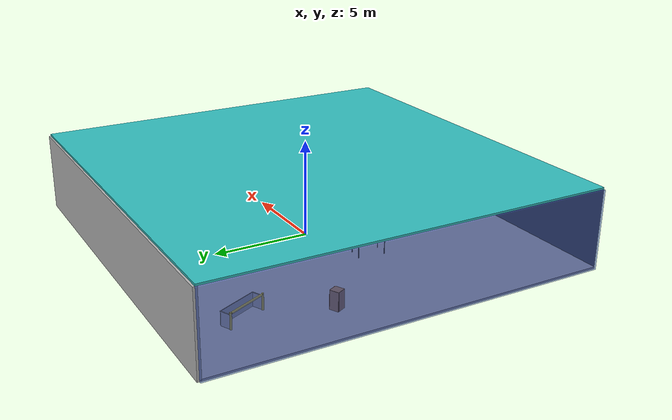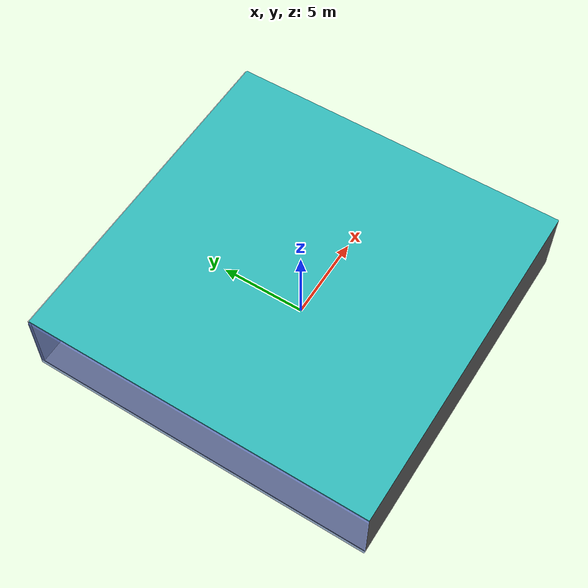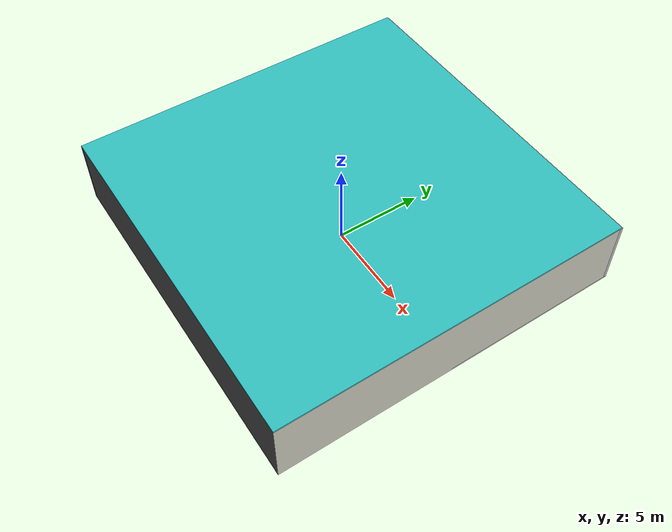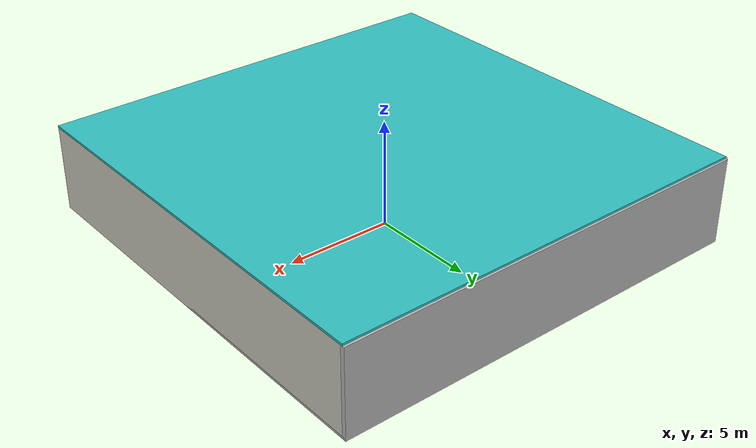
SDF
<sdf version="1.4">
 <world name="default">
  <physics type="ode">
   <max_step_size>0.001</max_step_size>
   <real_time_factor>1</real_time_factor>
   <real_time_update_rate>1000</real_time_update_rate>
   <gravity>0 0 -9.8</gravity>
  </physics>
  <scene><ambient>0.4 0.4 0.4 1</ambient><background>0.7 0.7 0.7 1</background><shadows>1</shadows></scene>
  <model name="Surrounding">
   <static>1</static>
   <link name="Ceiling">
    <collision name="Ceiling_Collision"><geometry><box><size>20 20 0.1</size></box></geometry></collision>
    <visual name="Ceiling_Visual">
     <geometry><box><size>20 20 0.1</size></box></geometry>
     <material>
      <script><uri>file://media/materials/scripts/gazebo.material</uri><name>Gazebo/Turquoise</name></script>
     </material>
    </visual>
    <pose>0 0 4.05 0 0 0</pose>
   </link>
   <link name="Wall_South">
    <collision name="Wall_South_Collision">
     <geometry><box><size>20 0 4</size></box></geometry>
     <pose>0 0 2 0 -0 0</pose>
    </collision>
    <visual name="Wall_South_Visual">
     <pose>0 0 2 0 -0 0</pose>
     <geometry><box><size>20 0 4</size></box></geometry>
     <material>
      <script><uri>file://media/materials/scripts/gazebo.material</uri><name>Gazebo/DarkGrey</name></script>
     </material>
    </visual>
    <velocity_decay><linear>0</linear><angular>0</angular></velocity_decay>
    <pose>0 -10 0 0 -0 0</pose>
   </link>
   <link name="Wall_East">
    <collision name="Wall_21_Collision">
     <geometry><box><size>20 0 4</size></box></geometry>
     <pose>0 0 2 0 -0 0</pose>
    </collision>
    <visual name="Wall_21_Visual">
     <pose>0 0 2 0 -0 0</pose>
     <geometry><box><size>20 0 4</size></box></geometry>
     <material>
      <script><uri>file://media/materials/scripts/gazebo.material</uri><name>Gazebo/PaintedWall</name></script>
     </material>
    </visual>
    <velocity_decay><linear>0</linear><angular>0</angular></velocity_decay>
    <pose>10 0 0 0 -0 1.5708</pose>
   </link>
   <link name="Wall_North">
    <collision name="Wall_22_Collision">
     <geometry><box><size>20 0.2 4</size></box></geometry>
     <pose>0 0 2 0 -0 0</pose>
    </collision>
    <visual name="Wall_22_Visual">
     <pose>0 0 2 0 -0 0</pose>
     <geometry><box><size>20 0.2 4</size></box></geometry>
     <material>
      <script><uri>file://media/materials/scripts/gazebo.material</uri><name>Gazebo/Pioneer2Body</name></script>
     </material>
    </visual>
    <velocity_decay><linear>0</linear><angular>0</angular></velocity_decay>
    <pose>0 10 0 0 -0 0</pose>
   </link>
   <link name="Wall_West">
    <collision name="Wall_23_Collision">
     <geometry><box><size>20 0.2 4</size></box></geometry>
     <pose>0 0 2 0 -0 0</pose>
    </collision>
    <visual name="Wall_23_Visual">
     <pose>0 0 2 0 -0 0</pose>
     <geometry><box><size>20 0.2 4</size></box></geometry>
     <material>
      <script><uri>file://media/materials/scripts/gazebo.material</uri><name>Gazebo/BlueTransparent</name></script>
     </material>
    </visual>
    <velocity_decay><linear>0</linear><angular>0</angular></velocity_decay>
    <pose>-10 0 0 0 0 -1.5708</pose>
   </link>
   <link name="Ground_link">
    <collision name="collision">
     <pose>0 0 .05 0 -0 0</pose>
     <geometry><box><size>20 20 0.1</size></box></geometry>
    </collision>
    <visual name="visual">
     <pose>0 0 .05 0 -0 0</pose>
     <geometry><box><size>20 20 0.1</size></box></geometry>
     <material>
      <script><uri>file://media/materials/scripts/gazebo.material</uri><name>Gazebo/JointAnchor</name></script>
     </material>
    </visual>
   </link>
   <static>1</static>
  </model>
  <spherical_coordinates>
   <surface_model>EARTH_WGS84</surface_model>
   <latitude_deg>0</latitude_deg>
   <longitude_deg>0</longitude_deg>
   <elevation>0</elevation>
   <heading_deg>0</heading_deg>
  </spherical_coordinates>
  <light name="lightball_0" type="diffuse">
   <diffuse>0.8 0.8 0.8 1</diffuse>
   <specular>0.2 0.2 0.2 1</specular>
   <attenuation>
    <range>100</range>
    <constant>0.7</constant>
    <linear>0.01</linear>
    <quadratic>0.001</quadratic>
   </attenuation>
   <direction>-0.5 0.1 -0.9</direction>
   <pose>2.75294192094 -2.65273269748 1.00021453156 0 0 0</pose>
  </light>
  <light name="lightball_1" type="diffuse">
   <diffuse>0.8 0.8 0.8 1</diffuse>
   <specular>0.2 0.2 0.2 1</specular>
   <attenuation>
    <range>100</range>
    <constant>0.7</constant>
    <linear>0.01</linear>
    <quadratic>0.001</quadratic>
   </attenuation>
   <direction>-0.5 0.1 -0.9</direction>
   <pose>4.79830336037 -0.625609316734 1.55333189566 0 0 0</pose>
  </light>
  <light name="lightball_2" type="diffuse">
   <diffuse>0.8 0.8 0.8 1</diffuse>
   <specular>0.2 0.2 0.2 1</specular>
   <attenuation>
    <range>100</range>
    <constant>0.7</constant>
    <linear>0.01</linear>
    <quadratic>0.001</quadratic>
   </attenuation>
   <direction>-0.5 0.1 -0.9</direction>
   <pose>8.51034840192 1.13165033678 2.62508162336 0 0 0</pose>
  </light>
  <light name="lightball_3" type="diffuse">
   <diffuse>0.8 0.8 0.8 1</diffuse>
   <specular>0.2 0.2 0.2 1</specular>
   <attenuation>
    <range>100</range>
    <constant>0.7</constant>
    <linear>0.01</linear>
    <quadratic>0.001</quadratic>
   </attenuation>
   <direction>-0.5 0.1 -0.9</direction>
   <pose>-2.92989788324 -6.27741812208 1.57143236798 0 0 0</pose>
  </light>
  <include><uri>model://cabinet</uri><pose>-7.69379616951 2.67649145293 0 0 0 2.03975666978</pose></include>
  <include>
   <uri>model://robocup_3Dsim_goal</uri>
   <pose>-6.7243107277 6.46070448162 0 0 0 0.439204426442</pose>
  </include>
  <include><uri>model://table</uri><pose>-3.57334620351 -1.5176990896 0 0 0 1.44256708364</pose></include>
  <include><uri>model://table</uri><pose>4.71849083081 4.88511907823 0 0 0 0.834872858719</pose></include>
  <include>
   <uri>model://construction_cone</uri>
   <pose>4.52262282607 6.98117280518 0 0 0 0.318809166557</pose>
  </include>
  <include><uri>model://cabinet</uri><pose>6.98175265062 8.20230796652 0 0 0 0.803280738224</pose></include>
 </world>
</sdf>

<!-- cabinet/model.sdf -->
<sdf version="1.5">
  <model name="cabinet">
    <static>true</static>
    <link name="cabinet_bottom_plate">
      <inertial>
        <pose>0 0 -1 0 0 0</pose>
        <inertia>
          <ixx>2.050000</ixx>
          <ixy>0</ixy>
          <ixz>0</ixz>
          <iyy>2.050000</iyy>
          <iyz>0</iyz>
          <izz>2.050000</izz>
        </inertia>
        <mass>25.000000</mass>
      </inertial>
      <collision name="cabinet_bottom_plate_geom">
        <pose>0 0 0.010000 0 0 0</pose>
        <geometry>
          <box>
            <size>0.450000 0.450000 0.020000</size>
          </box>
        </geometry>
      </collision>
      <visual name="cabinet_bottom_plate_geom_visual">
        <pose>0 0 0.010000 0 0 0</pose>
        <geometry>
          <box>
            <size>0.450000 0.450000 0.020000</size>
          </box>
        </geometry>
        <material>
          <script>
            <uri>model://media/materials/scripts/gazebo.material</uri>
            <name>Gazebo/Wood</name>
          </script>
        </material>
      </visual>
      <collision name="cabinet_bottom_plate_geom_cabinet_back_plate">
        <pose>0.235000 0 0.510000 0 0 0</pose>
        <geometry>
          <box>
            <size>0.020000 0.450000 1.020000</size>
          </box>
        </geometry>
      </collision>
      <visual name="cabinet_bottom_plate_geom_cabinet_back_plate_visual">
        <pose>0.235000 0 0.510000 0 0 0</pose>
        <geometry>
          <box>
            <size>0.020000 0.450000 1.020000</size>
          </box>
        </geometry>
        <material>
          <script>
            <uri>model://media/materials/scripts/gazebo.material</uri>
            <name>Gazebo/Wood</name>
          </script>
        </material>
      </visual>
      <collision name="cabinet_bottom_plate_geom_cabinet_left_plate">
        <pose>0 0.235000 0.510000 0 0 0</pose>
        <geometry>
          <box>
            <size>0.450000 0.020000 1.020000</size>
          </box>
        </geometry>
      </collision>
      <visual name="cabinet_bottom_plate_geom_cabinet_left_plate_visual">
        <pose>0 0.235000 0.510000 0 0 0</pose>
        <geometry>
          <box>
            <size>0.450000 0.020000 1.020000</size>
          </box>
        </geometry>
        <material>
          <script>
            <uri>model://media/materials/scripts/gazebo.material</uri>
            <name>Gazebo/Wood</name>
          </script>
        </material>
      </visual>
      <collision name="cabinet_bottom_plate_geom_cabinet_middle_plate">
        <pose>0 0 0.510000 0 0 0</pose>
        <geometry>
          <box>
            <size>0.450000 0.450000 0.020000</size>
          </box>
        </geometry>
      </collision>
      <visual name="cabinet_bottom_plate_geom_cabinet_middle_plate_visual">
        <pose>0 0 0.510000 0 0 0</pose>
        <geometry>
          <box>
            <size>0.450000 0.450000 0.020000</size>
          </box>
        </geometry>
        <material>
          <script>
            <uri>model://media/materials/scripts/gazebo.material</uri>
            <name>Gazebo/Wood</name>
          </script>
        </material>
      </visual>
      <collision name="cabinet_bottom_plate_geom_cabinet_right_plate">
        <pose>0 -0.235000 0.510000 0 0 0</pose>
        <geometry>
          <box>
            <size>0.450000 0.020000 1.020000</size>
          </box>
        </geometry>
      </collision>
      <visual name="cabinet_bottom_plate_geom_cabinet_right_plate_visual">
        <pose>0 -0.235000 0.510000 0 0 0</pose>
        <geometry>
          <box>
            <size>0.450000 0.020000 1.020000</size>
          </box>
        </geometry>
        <material>
          <script>
            <uri>model://media/materials/scripts/gazebo.material</uri>
            <name>Gazebo/Wood</name>
          </script>
        </material>
      </visual>
      <collision name="cabinet_bottom_plate_geom_cabinet_top_plate">
        <pose>0 0 1.010000 0 0 0</pose>
        <geometry>
          <box>
            <size>0.450000 0.450000 0.020000</size>
          </box>
        </geometry>
      </collision>
      <visual name="cabinet_bottom_plate_geom_cabinet_top_plate_visual">
        <pose>0 0 1.010000 0 0 0</pose>
        <geometry>
          <box>
            <size>0.450000 0.450000 0.020000</size>
          </box>
        </geometry>
        <material>
          <script>
            <uri>model://media/materials/scripts/gazebo.material</uri>
            <name>Gazebo/Wood</name>
          </script>
        </material>
      </visual>
    </link>
  </model>
</sdf>

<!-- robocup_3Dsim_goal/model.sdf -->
<sdf version="1.5">
  <model name="robocup_3d_goal">
    <static>true</static>
    <link name="left_post">
      <pose>0 1.05 0.45 0 0 0</pose>
      <collision name="collision">
        <geometry>
          <cylinder>
            <radius>0.05</radius>
            <length>0.9</length>
          </cylinder>
        </geometry>
      </collision>
      <visual name="visual">
        <geometry>
          <cylinder>
            <radius>0.05</radius>
            <length>0.9</length>
          </cylinder>
        </geometry>
        <material>
          <script>
            <uri>file://media/materials/scripts/gazebo.material</uri>
            <name>Gazebo/ZincYellow</name>
          </script>
        </material>
      </visual>
    </link>
    <link name="left_support_horiz_lower">
      <pose>0.30 1.05 0.01 0 0 0</pose>
      <collision name="collision">
        <geometry>
          <box>
            <size>0.50 0.02 0.02</size>
          </box>
        </geometry>
      </collision>
      <visual name="visual">
        <geometry>
          <box>
            <size>0.50 0.02 0.02</size>
          </box>
        </geometry>
        <material>
          <script>
            <uri>file://media/materials/scripts/gazebo.material</uri>
            <name>Gazebo/White</name>
          </script>
        </material>
      </visual>
    </link>
    <link name="left_support_horiz_upper">
      <pose>0.30 1.05 0.79 0 0 0</pose>
      <collision name="collision">
        <geometry>
          <box>
            <size>0.50 0.02 0.02</size>
          </box>
        </geometry>
      </collision>
      <visual name="visual">
        <geometry>
          <box>
            <size>0.50 0.02 0.02</size>
          </box>
        </geometry>
        <material>
          <script>
            <uri>file://media/materials/scripts/gazebo.material</uri>
            <name>Gazebo/White</name>
          </script>
        </material>
      </visual>
    </link>
    <link name="left_support_vertical">
      <pose>0.56 1.05 0.4 0 1.5708 0</pose>
      <collision name="collision">
        <geometry>
          <box>
            <size>0.80 0.02 0.02</size>
          </box>
        </geometry>
      </collision>
      <visual name="visual">
        <geometry>
          <box>
            <size>0.80 0.02 0.02</size>
          </box>
        </geometry>
        <material>
          <script>
            <uri>file://media/materials/scripts/gazebo.material</uri>
            <name>Gazebo/White</name>
          </script>
        </material>
      </visual>
    </link>
    <link name="right_support_horiz_lower">
      <pose>0.30 -1.05 0.01 0 0 0</pose>
      <collision name="collision">
        <geometry>
          <box>
            <size>0.50 0.02 0.02</size>
          </box>
        </geometry>
      </collision>
      <visual name="visual">
        <geometry>
          <box>
            <size>0.50 0.02 0.02</size>
          </box>
        </geometry>
        <material>
          <script>
            <uri>file://media/materials/scripts/gazebo.material</uri>
            <name>Gazebo/White</name>
          </script>
        </material>
      </visual>
    </link>
    <link name="right_support_horiz_upper">
      <pose>0.30 -1.05 0.79 0 0 0</pose>
      <collision name="collision">
        <geometry>
          <box>
            <size>0.50 0.02 0.02</size>
          </box>
        </geometry>
      </collision>
      <visual name="visual">
        <geometry>
          <box>
            <size>0.50 0.02 0.02</size>
          </box>
        </geometry>
        <material>
          <script>
            <uri>file://media/materials/scripts/gazebo.material</uri>
            <name>Gazebo/White</name>
          </script>
        </material>
      </visual>
    </link>
    <link name="right_support_vertical">
      <pose>0.56 -1.05 0.4 0 1.5708 0</pose>
      <collision name="collision">
        <geometry>
          <box>
            <size>0.80 0.02 0.02</size>
          </box>
        </geometry>
      </collision>
      <visual name="visual">
        <geometry>
          <box>
            <size>0.80 0.02 0.02</size>
          </box>
        </geometry>
        <material>
          <script>
            <uri>file://media/materials/scripts/gazebo.material</uri>
            <name>Gazebo/White</name>
          </script>
        </material>
      </visual>
    </link>
    <link name="center_support_horiz_lower">
      <pose>0.56 0 0.01 0 1.5708 0</pose>
      <collision name="collision">
        <geometry>
          <box>
            <size>0.02 2.08 0.02</size>
          </box>
        </geometry>
      </collision>
      <visual name="visual">
        <geometry>
          <box>
            <size>0.02 2.08 0.02</size>
          </box>
        </geometry>
        <material>
          <script>
            <uri>file://media/materials/scripts/gazebo.material</uri>
            <name>Gazebo/White</name>
          </script>
        </material>
      </visual>
    </link>
    <link name="center_support_horiz_upper">
      <pose>0.56 0 0.79 0 1.5708 0</pose>
      <collision name="collision">
        <geometry>
          <box>
            <size>0.02 2.08 0.02</size>
          </box>
        </geometry>
      </collision>
      <visual name="visual">
        <geometry>
          <box>
            <size>0.02 2.08 0.02</size>
          </box>
        </geometry>
        <material>
          <script>
            <uri>file://media/materials/scripts/gazebo.material</uri>
            <name>Gazebo/White</name>
          </script>
        </material>
      </visual>
    </link>
    <link name="right_post">
      <pose>0 -1.05 0.45 0 0 0</pose>
      <collision name="collision">
        <geometry>
          <cylinder>
            <radius>0.05</radius>
            <length>0.9</length>
          </cylinder>
        </geometry>
      </collision>
      <visual name="visual">
        <geometry>
          <cylinder>
            <radius>0.05</radius>
            <length>0.9</length>
          </cylinder>
        </geometry>
        <material>
          <script>
            <uri>file://media/materials/scripts/gazebo.material</uri>
            <name>Gazebo/ZincYellow</name>
          </script>
        </material>
      </visual>
    </link>
    <link name="crossbar">
      <pose>0 0 0.85 1.57 1.57 0</pose>
      <collision name="collision">
        <geometry>
          <cylinder>
            <radius>0.05</radius>
            <length>2.0</length>
          </cylinder>
        </geometry>
      </collision>
      <visual name="visual">
        <geometry>
          <cylinder>
            <radius>0.05</radius>
            <length>2.0</length>
          </cylinder>
        </geometry>
        <material>
          <script>
            <uri>file://media/materials/scripts/gazebo.material</uri>
            <name>Gazebo/ZincYellow</name>
          </script>
        </material>
      </visual>
    </link>
    <link name="center_net">
      <pose>0.56 0 0.40 0 0 0</pose>
      <collision name="collision">
        <geometry>
          <box>
            <size>0.01 2.1 0.80</size>
          </box>
        </geometry>
      </collision>
      <visual name="visual">
        <geometry>
          <box>
            <size>0.01 2.1 0.80</size>
          </box>
        </geometry>
        <material>
          <script>
            <uri>model://../model_source/models/robocup09_spl_field/materials/scripts/</uri>
            <uri>model://../model_source/models/robocup09_spl_field/materials/textures/</uri>
            <name>RoboCup/Net</name>
          </script>
        </material>
      </visual>
    </link>
    <link name="left_net">
      <pose>0.30 1.05 0.40 0 0 0</pose>
      <collision name="collision">
        <geometry>
          <box>
            <size>0.50 0.01 0.76</size>
          </box>
        </geometry>
      </collision>
      <visual name="visual">
        <geometry>
          <box>
            <size>0.50 0.01 0.76</size>
          </box>
        </geometry>
        <material>
          <script>
            <uri>model://../model_source/models/robocup09_spl_field/materials/scripts/</uri>
            <uri>model://../model_source/models/robocup09_spl_field/materials/textures/</uri>
            <name>RoboCup/Net</name>
          </script>
        </material>
      </visual>
    </link>
    <link name="right_net">
      <pose>0.30 -1.05 0.40 0 0 0</pose>
      <collision name="collision">
        <geometry>
          <box>
            <size>0.50 0.01 0.76</size>
          </box>
        </geometry>
      </collision>
      <visual name="visual">
        <geometry>
          <box>
            <size>0.50 0.01 0.76</size>
          </box>
        </geometry>
        <material>
          <script>
            <uri>model://../model_source/models/robocup09_spl_field/materials/scripts/</uri>
            <uri>model://../model_source/models/robocup09_spl_field/materials/textures/</uri>
            <name>RoboCup/Net</name>
          </script>
        </material>
      </visual>
    </link>
  </model>
</sdf>

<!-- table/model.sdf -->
<sdf version="1.5">
  <model name="table">
    <static>true</static>
    <link name="link">
      <collision name="surface">
        <pose>0 0 1.0 0 0 0</pose>
        <geometry>
          <box>
            <size>1.5 0.8 0.03</size>
          </box>
        </geometry>
        <surface>
          <friction>
            <ode>
              <mu>0.6</mu>
              <mu2>0.6</mu2>
            </ode>
          </friction>
        </surface>
      </collision>
      <visual name="visual1">
        <pose>0 0 1.0 0 0 0</pose>
        <geometry>
          <box>
            <size>1.5 0.8 0.03</size>
          </box>
        </geometry>
        <material>
          <script>
            <uri>model://media/materials/scripts/gazebo.material</uri>
            <name>Gazebo/Wood</name>
          </script>
        </material>
      </visual>
      <collision name="front_left_leg">
        <pose>0.68 0.38 0.5 0 0 0</pose>
        <geometry>
          <cylinder>
            <radius>0.02</radius>
            <length>1.0</length>
          </cylinder>
        </geometry>
      </collision>
      <visual name="front_left_leg">
        <pose>0.68 0.38 0.5 0 0 0</pose>
        <geometry>
          <cylinder>
            <radius>0.02</radius>
            <length>1.0</length>
          </cylinder>
        </geometry>
        <material>
          <script>
            <uri>model://media/materials/scripts/gazebo.material</uri>
            <name>Gazebo/Grey</name>
          </script>
        </material>
      </visual>
      <collision name="front_right_leg">
        <pose>0.68 -0.38 0.5 0 0 0</pose>
        <geometry>
          <cylinder>
            <radius>0.02</radius>
            <length>1.0</length>
          </cylinder>
        </geometry>
      </collision>
      <visual name="front_right_leg">
        <pose>0.68 -0.38 0.5 0 0 0</pose>
        <geometry>
          <cylinder>
            <radius>0.02</radius>
            <length>1.0</length>
          </cylinder>
        </geometry>
        <material>
          <script>
            <uri>model://media/materials/scripts/gazebo.material</uri>
            <name>Gazebo/Grey</name>
          </script>
        </material>
      </visual>
      <collision name="back_right_leg">
        <pose>-0.68 -0.38 0.5 0 0 0</pose>
        <geometry>
          <cylinder>
            <radius>0.02</radius>
            <length>1.0</length>
          </cylinder>
        </geometry>
      </collision>
      <visual name="back_right_leg">
        <pose>-0.68 -0.38 0.5 0 0 0</pose>
        <geometry>
          <cylinder>
            <radius>0.02</radius>
            <length>1.0</length>
          </cylinder>
        </geometry>
        <material>
          <script>
            <uri>model://media/materials/scripts/gazebo.material</uri>
            <name>Gazebo/Grey</name>
          </script>
        </material>
      </visual>
      <collision name="back_left_leg">
        <pose>-0.68 0.38 0.5 0 0 0</pose>
        <geometry>
          <cylinder>
            <radius>0.02</radius>
            <length>1.0</length>
          </cylinder>
        </geometry>
      </collision>
      <visual name="back_left_leg">
        <pose>-0.68 0.38 0.5 0 0 0</pose>
        <geometry>
          <cylinder>
            <radius>0.02</radius>
            <length>1.0</length>
          </cylinder>
        </geometry>
        <material>
          <script>
            <uri>model://media/materials/scripts/gazebo.material</uri>
            <name>Gazebo/Grey</name>
          </script>
        </material>
      </visual>
    </link>
  </model>
</sdf>

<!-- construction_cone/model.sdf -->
<sdf version="1.5">
  <model name="Construction Cone">
    <link name="link">
      <collision name="collision">
        <geometry>
          <mesh>
            <scale>10 10 10</scale>
            <uri>file://isr-testbed/construction_cone/meshes/construction_cone.dae</uri>
          </mesh>
        </geometry>
      </collision>
      <visual name="visual">
        <geometry>
          <mesh>
            <scale>10 10 10</scale>
            <uri>file://isr-testbed/construction_cone/meshes/construction_cone.dae</uri>
          </mesh>
        </geometry>
      </visual>
    </link>
  </model>
</sdf>
